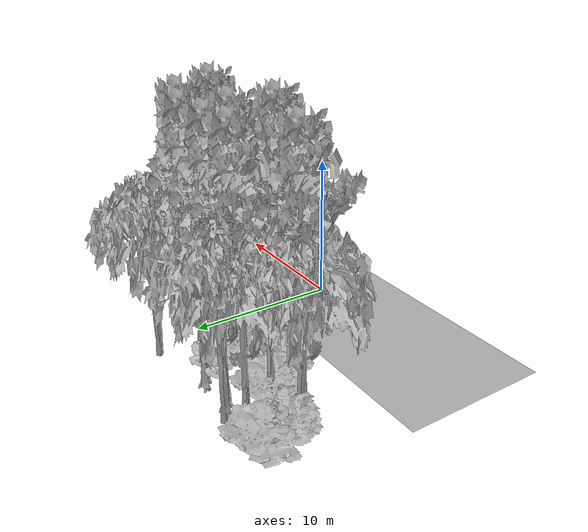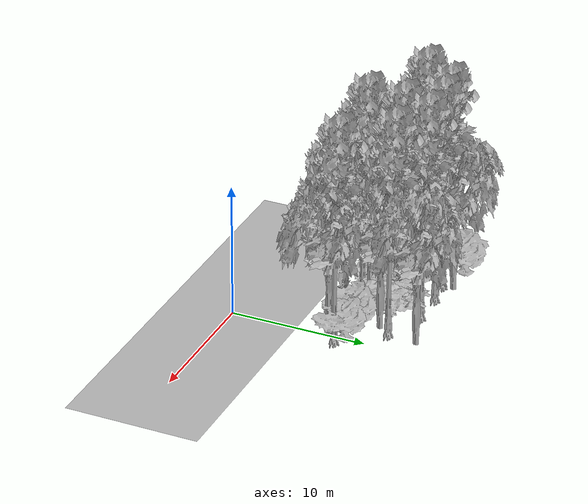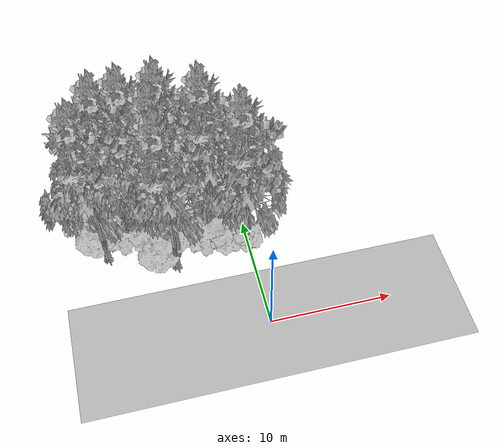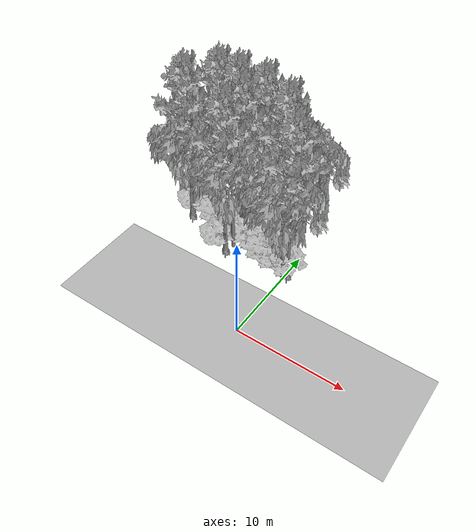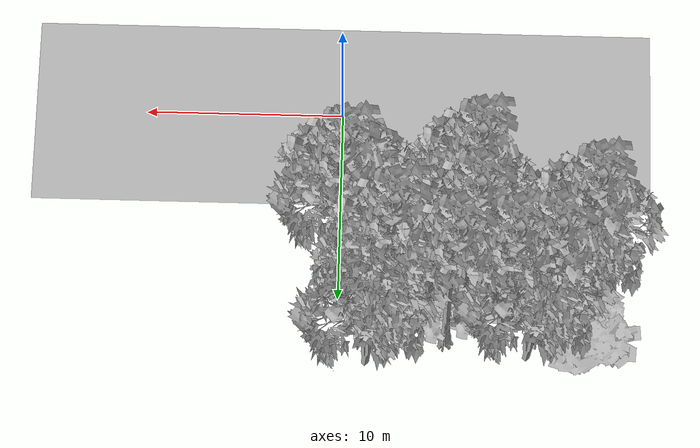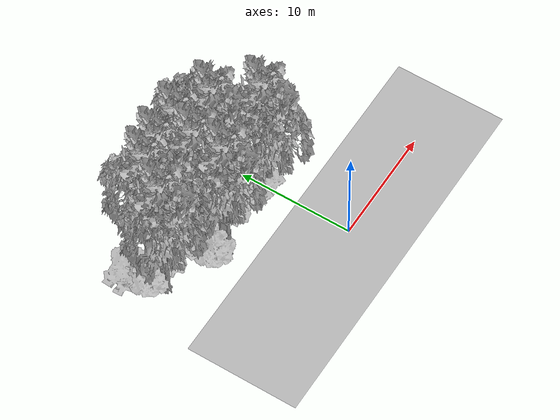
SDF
<sdf version="1.7">
 <world name="default">
  <model name="ground_plane">
   <static>1</static>
   <link name="link">
    <collision name="collision">
     <pose>-50 0 0 0 -0 0</pose>
     <geometry><plane><normal>0 0 1</normal><size>100 100</size></plane></geometry>
     <surface><contact><ode><min_depth>0.01</min_depth><max_vel>0</max_vel></ode></contact></surface>
    </collision>
    <visual name="grass">
     <cast_shadows>0</cast_shadows>
     <geometry>
      <mesh>
       <scale>0.5814285714285714 0.18142857142857144 0.1</scale>
       <uri>file://grass_plane/meshes/grass_plane.dae</uri>
      </mesh>
     </geometry>
    </visual>
   </link>
  </model>
  <model name="Tree 8">
   <static>1</static>
   <pose>-6.315009478187562 7.177040048046528 0 1.57079 -0 0</pose>
   <link name="link">
    <collision name="collision">
     <geometry><mesh><scale>3.5 5 3.5</scale><uri>model://tree_9/meshes/tree_9.obj</uri></mesh></geometry>
    </collision>
    <visual name="visual">
     <geometry><mesh><scale>3.5 5 3.5</scale><uri>model://tree_9/meshes/tree_9.obj</uri></mesh></geometry>
    </visual>
   </link>
  </model>
  <model name="Tree 13">
   <static>1</static>
   <pose>-6.0418201436939825 9.819887981123959 0 1.57079 -0 0</pose>
   <link name="link">
    <collision name="collision">
     <geometry><mesh><scale>4 2.5 4</scale><uri>model://tree_1/meshes/tree_1.obj</uri></mesh></geometry>
    </collision>
    <visual name="visual">
     <geometry><mesh><scale>4 2.5 4</scale><uri>model://tree_1/meshes/tree_1.obj</uri></mesh></geometry>
    </visual>
   </link>
  </model>
  <model name="Tree 17">
   <static>1</static>
   <pose>-9.561964382676493 12.8208271931912 0 1.57079 -0 0</pose>
   <link name="link">
    <collision name="collision">
     <geometry><mesh><scale>3.5 5 3.5</scale><uri>model://tree_2/meshes/tree_2.obj</uri></mesh></geometry>
    </collision>
    <visual name="visual">
     <geometry><mesh><scale>3.5 5 3.5</scale><uri>model://tree_2/meshes/tree_2.obj</uri></mesh></geometry>
    </visual>
   </link>
  </model>
  <model name="Tree 21">
   <static>1</static>
   <pose>-4.50756942797765 10.08531511082169 0 1.57079 -0 0</pose>
   <link name="link">
    <collision name="collision">
     <geometry><mesh><scale>4 2.5 4</scale><uri>model://tree_1/meshes/tree_1.obj</uri></mesh></geometry>
    </collision>
    <visual name="visual">
     <geometry><mesh><scale>4 2.5 4</scale><uri>model://tree_1/meshes/tree_1.obj</uri></mesh></geometry>
    </visual>
   </link>
  </model>
  <model name="Tree 115">
   <static>1</static>
   <pose>-1.5591693681686962 13.263280280250122 0 1.57079 -0 0</pose>
   <link name="link">
    <collision name="collision">
     <geometry><mesh><scale>3.5 5 3.5</scale><uri>model://tree_2/meshes/tree_2.obj</uri></mesh></geometry>
    </collision>
    <visual name="visual">
     <geometry><mesh><scale>3.5 5 3.5</scale><uri>model://tree_2/meshes/tree_2.obj</uri></mesh></geometry>
    </visual>
   </link>
  </model>
  <model name="Tree 134">
   <static>1</static>
   <pose>-6.304005792309361 9.826214545092483 0 1.57079 -0 0</pose>
   <link name="link">
    <collision name="collision">
     <geometry><mesh><scale>3.5 5 3.5</scale><uri>model://tree_9/meshes/tree_9.obj</uri></mesh></geometry>
    </collision>
    <visual name="visual">
     <geometry><mesh><scale>3.5 5 3.5</scale><uri>model://tree_9/meshes/tree_9.obj</uri></mesh></geometry>
    </visual>
   </link>
  </model>
  <model name="Tree 166">
   <static>1</static>
   <pose>-8.093773924874156 12.012939539512633 0 1.57079 -0 0</pose>
   <link name="link">
    <collision name="collision">
     <geometry><mesh><scale>3.5 5 3.5</scale><uri>model://tree_9/meshes/tree_9.obj</uri></mesh></geometry>
    </collision>
    <visual name="visual">
     <geometry><mesh><scale>3.5 5 3.5</scale><uri>model://tree_9/meshes/tree_9.obj</uri></mesh></geometry>
    </visual>
   </link>
  </model>
  <model name="Tree 169">
   <static>1</static>
   <pose>-7.766242587901587 8.201411838905614 0 1.57079 -0 0</pose>
   <link name="link">
    <collision name="collision">
     <geometry><mesh><scale>4 2.5 4</scale><uri>model://tree_1/meshes/tree_1.obj</uri></mesh></geometry>
    </collision>
    <visual name="visual">
     <geometry><mesh><scale>4 2.5 4</scale><uri>model://tree_1/meshes/tree_1.obj</uri></mesh></geometry>
    </visual>
   </link>
  </model>
  <model name="Tree 235">
   <static>1</static>
   <pose>-11.963174153257683 9.53148524681578 0 1.57079 -0 0</pose>
   <link name="link">
    <collision name="collision">
     <geometry><mesh><scale>3.5 5 3.5</scale><uri>model://tree_2/meshes/tree_2.obj</uri></mesh></geometry>
    </collision>
    <visual name="visual">
     <geometry><mesh><scale>3.5 5 3.5</scale><uri>model://tree_2/meshes/tree_2.obj</uri></mesh></geometry>
    </visual>
   </link>
  </model>
  <model name="Tree 242">
   <static>1</static>
   <pose>-2.60241587746129 7.973924783425506 0 1.57079 -0 0</pose>
   <link name="link">
    <collision name="collision">
     <geometry><mesh><scale>3 2 3</scale><uri>model://tree_3/meshes/tree_3.obj</uri></mesh></geometry>
    </collision>
    <visual name="visual">
     <geometry><mesh><scale>3 2 3</scale><uri>model://tree_3/meshes/tree_3.obj</uri></mesh></geometry>
    </visual>
   </link>
  </model>
  <model name="Tree 245">
   <static>1</static>
   <pose>-2.5077756789965804 10.159841752355252 0 1.57079 -0 0</pose>
   <link name="link">
    <collision name="collision">
     <geometry><mesh><scale>3.5 5 3.5</scale><uri>model://tree_2/meshes/tree_2.obj</uri></mesh></geometry>
    </collision>
    <visual name="visual">
     <geometry><mesh><scale>3.5 5 3.5</scale><uri>model://tree_2/meshes/tree_2.obj</uri></mesh></geometry>
    </visual>
   </link>
  </model>
  <model name="Tree 259">
   <static>1</static>
   <pose>-9.910803344402076 10.14411007127833 0 1.57079 -0 0</pose>
   <link name="link">
    <collision name="collision">
     <geometry><mesh><scale>3.5 5 3.5</scale><uri>model://tree_2/meshes/tree_2.obj</uri></mesh></geometry>
    </collision>
    <visual name="visual">
     <geometry><mesh><scale>3.5 5 3.5</scale><uri>model://tree_2/meshes/tree_2.obj</uri></mesh></geometry>
    </visual>
   </link>
  </model>
  <model name="Tree 306">
   <static>1</static>
   <pose>-12.710659095980937 12.125643316578898 0 1.57079 -0 0</pose>
   <link name="link">
    <collision name="collision">
     <geometry><mesh><scale>3 2 3</scale><uri>model://tree_3/meshes/tree_3.obj</uri></mesh></geometry>
    </collision>
    <visual name="visual">
     <geometry><mesh><scale>3 2 3</scale><uri>model://tree_3/meshes/tree_3.obj</uri></mesh></geometry>
    </visual>
   </link>
  </model>
  <model name="Tree 309">
   <static>1</static>
   <pose>-2.371753609264779 10.822067851207365 0 1.57079 -0 0</pose>
   <link name="link">
    <collision name="collision">
     <geometry><mesh><scale>3.5 5 3.5</scale><uri>model://tree_9/meshes/tree_9.obj</uri></mesh></geometry>
    </collision>
    <visual name="visual">
     <geometry><mesh><scale>3.5 5 3.5</scale><uri>model://tree_9/meshes/tree_9.obj</uri></mesh></geometry>
    </visual>
   </link>
  </model>
  <model name="Tree 317">
   <static>1</static>
   <pose>0.06362389675827984 7.776190664188643 0 1.57079 -0 0</pose>
   <link name="link">
    <collision name="collision">
     <geometry><mesh><scale>3.5 5 3.5</scale><uri>model://tree_9/meshes/tree_9.obj</uri></mesh></geometry>
    </collision>
    <visual name="visual">
     <geometry><mesh><scale>3.5 5 3.5</scale><uri>model://tree_9/meshes/tree_9.obj</uri></mesh></geometry>
    </visual>
   </link>
  </model>
  <model name="Tree 339">
   <static>1</static>
   <pose>-11.848760222175152 9.295461304167098 0 1.57079 -0 0</pose>
   <link name="link">
    <collision name="collision">
     <geometry><mesh><scale>3.5 5 3.5</scale><uri>model://tree_9/meshes/tree_9.obj</uri></mesh></geometry>
    </collision>
    <visual name="visual">
     <geometry><mesh><scale>3.5 5 3.5</scale><uri>model://tree_9/meshes/tree_9.obj</uri></mesh></geometry>
    </visual>
   </link>
  </model>
  <model name="Tree 357">
   <static>1</static>
   <pose>-10.041628964595176 11.787553644673999 0 1.57079 -0 0</pose>
   <link name="link">
    <collision name="collision">
     <geometry><mesh><scale>3.5 5 3.5</scale><uri>model://tree_9/meshes/tree_9.obj</uri></mesh></geometry>
    </collision>
    <visual name="visual">
     <geometry><mesh><scale>3.5 5 3.5</scale><uri>model://tree_9/meshes/tree_9.obj</uri></mesh></geometry>
    </visual>
   </link>
  </model>
  <model name="Tree 362">
   <static>1</static>
   <pose>-5.420624876461936 12.033693788327987 0 1.57079 -0 0</pose>
   <link name="link">
    <collision name="collision">
     <geometry><mesh><scale>3.5 5 3.5</scale><uri>model://tree_9/meshes/tree_9.obj</uri></mesh></geometry>
    </collision>
    <visual name="visual">
     <geometry><mesh><scale>3.5 5 3.5</scale><uri>model://tree_9/meshes/tree_9.obj</uri></mesh></geometry>
    </visual>
   </link>
  </model>
  <model name="Tree 364">
   <static>1</static>
   <pose>-6.071488539397862 7.94639413076349 0 1.57079 -0 0</pose>
   <link name="link">
    <collision name="collision">
     <geometry><mesh><scale>3.5 5 3.5</scale><uri>model://tree_2/meshes/tree_2.obj</uri></mesh></geometry>
    </collision>
    <visual name="visual">
     <geometry><mesh><scale>3.5 5 3.5</scale><uri>model://tree_2/meshes/tree_2.obj</uri></mesh></geometry>
    </visual>
   </link>
  </model>
  <model name="Tree 378">
   <static>1</static>
   <pose>-0.8934805423638181 7.9054265525877305 0 1.57079 -0 0</pose>
   <link name="link">
    <collision name="collision">
     <geometry><mesh><scale>3 2 3</scale><uri>model://tree_3/meshes/tree_3.obj</uri></mesh></geometry>
    </collision>
    <visual name="visual">
     <geometry><mesh><scale>3 2 3</scale><uri>model://tree_3/meshes/tree_3.obj</uri></mesh></geometry>
    </visual>
   </link>
  </model>
  <model name="Tree 452">
   <static>1</static>
   <pose>-12.63910725338183 10.957169186131843 0 1.57079 -0 0</pose>
   <link name="link">
    <collision name="collision">
     <geometry><mesh><scale>4 2.5 4</scale><uri>model://tree_1/meshes/tree_1.obj</uri></mesh></geometry>
    </collision>
    <visual name="visual">
     <geometry><mesh><scale>4 2.5 4</scale><uri>model://tree_1/meshes/tree_1.obj</uri></mesh></geometry>
    </visual>
   </link>
  </model>
  <model name="Tree 467">
   <static>1</static>
   <pose>-9.19333074589813 9.679474271899597 0 1.57079 -0 0</pose>
   <link name="link">
    <collision name="collision">
     <geometry><mesh><scale>3 2 3</scale><uri>model://tree_3/meshes/tree_3.obj</uri></mesh></geometry>
    </collision>
    <visual name="visual">
     <geometry><mesh><scale>3 2 3</scale><uri>model://tree_3/meshes/tree_3.obj</uri></mesh></geometry>
    </visual>
   </link>
  </model>
  <model name="Tree 529">
   <static>1</static>
   <pose>-0.30100262121600707 7.260591627275655 0 1.57079 -0 0</pose>
   <link name="link">
    <collision name="collision">
     <geometry><mesh><scale>3.5 5 3.5</scale><uri>model://tree_2/meshes/tree_2.obj</uri></mesh></geometry>
    </collision>
    <visual name="visual">
     <geometry><mesh><scale>3.5 5 3.5</scale><uri>model://tree_2/meshes/tree_2.obj</uri></mesh></geometry>
    </visual>
   </link>
  </model>
 </world>
</sdf>
